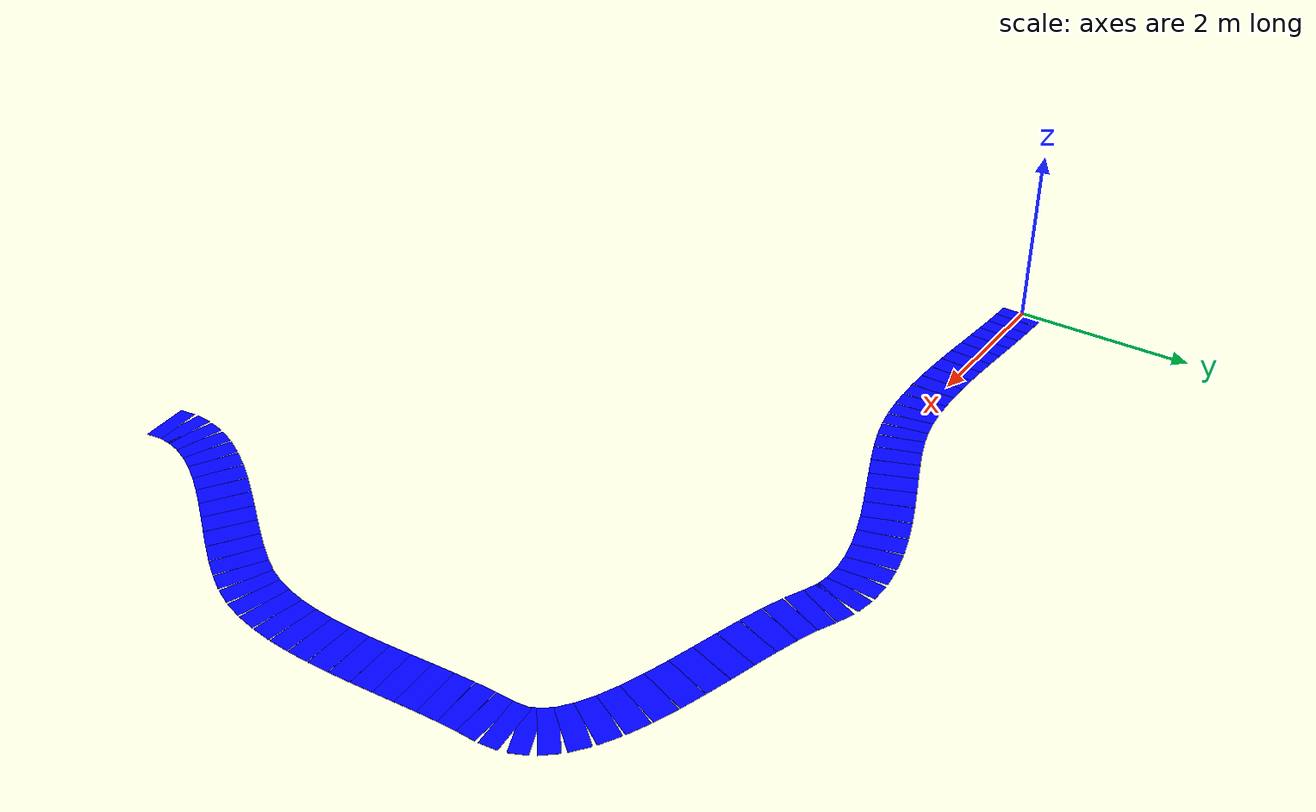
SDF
<?xml version="1.0" ?>
<sdf version="1.10">
  <model name="generated_path">
    <static>true</static>
    <pose>0 0 0 0 0 0</pose>

    <link name="path_segment_0">
      <pose>0.09878952298527195 -0.001483227966860554 9.967201166180758e-05 0 0 -0.015012892935983926</pose>
      <visual name="path_visual_0">
        <geometry>
          <box>
            <size>0.19760131393145391 0.5 0.002</size>
          </box>
        </geometry>
        <material>
          <ambient>0.0 0.0 1.0 1.0</ambient>
          <diffuse>0.0 0.0 1.0 1.0</diffuse>
          <specular>0.0 0.0 1.0 1.0</specular>
        </material>
      </visual>
      <collision name="path_collision_0">
        <geometry>
          <box>
            <size>0.19760131393145391 0.5 0.002</size>
          </box>
        </geometry>
      </collision>
    </link>

    <link name="path_segment_1">
      <pose>0.30059950424329346 -0.006959761998345677 0.0002848032069970846 0 0 -0.03874286655798512</pose>
      <visual name="path_visual_1">
        <geometry>
          <box>
            <size>0.20619564802442458 0.5 0.002</size>
          </box>
        </geometry>
        <material>
          <ambient>0.0 0.0 1.0 1.0</ambient>
          <diffuse>0.0 0.0 1.0 1.0</diffuse>
          <specular>0.0 0.0 1.0 1.0</specular>
        </material>
      </visual>
      <collision name="path_collision_1">
        <geometry>
          <box>
            <size>0.20619564802442458 0.5 0.002</size>
          </box>
        </geometry>
      </collision>
    </link>

    <link name="path_segment_2">
      <pose>0.5101349043373846 -0.01677188547142319 0.0004426020408163266 0 0 -0.054574871914144334</pose>
      <visual name="path_visual_2">
        <geometry>
          <box>
            <size>0.213347523700058 0.5 0.002</size>
          </box>
        </geometry>
        <material>
          <ambient>0.0 0.0 1.0 1.0</ambient>
          <diffuse>0.0 0.0 1.0 1.0</diffuse>
          <specular>0.0 0.0 1.0 1.0</specular>
        </material>
      </visual>
      <collision name="path_collision_2">
        <geometry>
          <box>
            <size>0.213347523700058 0.5 0.002</size>
          </box>
        </geometry>
      </collision>
    </link>

    <link name="path_segment_3">
      <pose>0.7259228197897747 -0.029550464878221806 0.0005752551020408163 0 0 -0.06360560707752454</pose>
      <visual name="path_visual_3">
        <geometry>
          <box>
            <size>0.21898877645436943 0.5 0.002</size>
          </box>
        </geometry>
        <material>
          <ambient>0.0 0.0 1.0 1.0</ambient>
          <diffuse>0.0 0.0 1.0 1.0</diffuse>
          <specular>0.0 0.0 1.0 1.0</specular>
        </material>
      </visual>
      <collision name="path_collision_3">
        <geometry>
          <box>
            <size>0.21898877645436943 0.5 0.002</size>
          </box>
        </geometry>
      </collision>
    </link>

    <link name="path_segment_4">
      <pose>0.9464903471226933 -0.04392636671087026 0.0006849489795918368 0 0 -0.0665368809097923</pose>
      <visual name="path_visual_4">
        <geometry>
          <box>
            <size>0.22308273634452622 0.5 0.002</size>
          </box>
        </geometry>
        <material>
          <ambient>0.0 0.0 1.0 1.0</ambient>
          <diffuse>0.0 0.0 1.0 1.0</diffuse>
          <specular>0.0 0.0 1.0 1.0</specular>
        </material>
      </visual>
      <collision name="path_collision_4">
        <geometry>
          <box>
            <size>0.22308273634452622 0.5 0.002</size>
          </box>
        </geometry>
      </collision>
    </link>

    <link name="path_segment_5">
      <pose>1.1703645828583695 -0.05853045746149725 0.0007738702623906706 0 0 -0.06376112739624466</pose>
      <visual name="path_visual_5">
        <geometry>
          <box>
            <size>0.2256178312563829 0.5 0.002</size>
          </box>
        </geometry>
        <material>
          <ambient>0.0 0.0 1.0 1.0</ambient>
          <diffuse>0.0 0.0 1.0 1.0</diffuse>
          <specular>0.0 0.0 1.0 1.0</specular>
        </material>
      </visual>
      <collision name="path_collision_5">
        <geometry>
          <box>
            <size>0.2256178312563829 0.5 0.002</size>
          </box>
        </geometry>
      </collision>
    </link>

    <link name="path_segment_6">
      <pose>1.396072623519033 -0.0719936036222315 0.0008442055393586005 0 0 -0.05541290578651952</pose>
      <visual name="path_visual_6">
        <geometry>
          <box>
            <size>0.2266045330611218 0.5 0.002</size>
          </box>
        </geometry>
        <material>
          <ambient>0.0 0.0 1.0 1.0</ambient>
          <diffuse>0.0 0.0 1.0 1.0</diffuse>
          <specular>0.0 0.0 1.0 1.0</specular>
        </material>
      </visual>
      <collision name="path_collision_6">
        <geometry>
          <box>
            <size>0.2266045330611218 0.5 0.002</size>
          </box>
        </geometry>
      </collision>
    </link>

    <link name="path_segment_7">
      <pose>1.6221415656269125 -0.08294667168520176 0.0008981413994169098 0 0 -0.04139522236983478</pose>
      <visual name="path_visual_7">
        <geometry>
          <box>
            <size>0.22607483620377075 0.5 0.002</size>
          </box>
        </geometry>
        <material>
          <ambient>0.0 0.0 1.0 1.0</ambient>
          <diffuse>0.0 0.0 1.0 1.0</diffuse>
          <specular>0.0 0.0 1.0 1.0</specular>
        </material>
      </visual>
      <collision name="path_collision_7">
        <geometry>
          <box>
            <size>0.22607483620377075 0.5 0.002</size>
          </box>
        </geometry>
      </collision>
    </link>

    <link name="path_segment_8">
      <pose>1.847098505704238 -0.09002052814253672 0.0009378644314868806 0 0 -0.021386326183052088</pose>
      <visual name="path_visual_8">
        <geometry>
          <box>
            <size>0.22408395643336296 0.5 0.002</size>
          </box>
        </geometry>
        <material>
          <ambient>0.0 0.0 1.0 1.0</ambient>
          <diffuse>0.0 0.0 1.0 1.0</diffuse>
          <specular>0.0 0.0 1.0 1.0</specular>
        </material>
      </visual>
      <collision name="path_collision_8">
        <geometry>
          <box>
            <size>0.22408395643336296 0.5 0.002</size>
          </box>
        </geometry>
      </collision>
    </link>

    <link name="path_segment_9">
      <pose>2.069470540273238 -0.09184603948636509 0.000965561224489796 0 0 0.005169350811798206</pose>
      <visual name="path_visual_9">
        <geometry>
          <box>
            <size>0.22071430492338318 0.5 0.002</size>
          </box>
        </geometry>
        <material>
          <ambient>0.0 0.0 1.0 1.0</ambient>
          <diffuse>0.0 0.0 1.0 1.0</diffuse>
          <specular>0.0 0.0 1.0 1.0</specular>
        </material>
      </visual>
      <collision name="path_collision_9">
        <geometry>
          <box>
            <size>0.22071430492338318 0.5 0.002</size>
          </box>
        </geometry>
      </collision>
    </link>

    <link name="path_segment_10">
      <pose>2.287784765856143 -0.08705407220881561 0.000983418367346939 0 0 0.03908301323054155</pose>
      <visual name="path_visual_10">
        <geometry>
          <box>
            <size>0.21608210496932423 0.5 0.002</size>
          </box>
        </geometry>
        <material>
          <ambient>0.0 0.0 1.0 1.0</ambient>
          <diffuse>0.0 0.0 1.0 1.0</diffuse>
          <specular>0.0 0.0 1.0 1.0</specular>
        </material>
      </visual>
      <collision name="path_collision_10">
        <geometry>
          <box>
            <size>0.21608210496932423 0.5 0.002</size>
          </box>
        </geometry>
      </collision>
    </link>

    <link name="path_segment_11">
      <pose>2.5005682789751815 -0.074275492802017 0.000993622448979592 0 0 0.08145151724469343</pose>
      <visual name="path_visual_11">
        <geometry>
          <box>
            <size>0.2103473041212603 0.5 0.002</size>
          </box>
        </geometry>
        <material>
          <ambient>0.0 0.0 1.0 1.0</ambient>
          <diffuse>0.0 0.0 1.0 1.0</diffuse>
          <specular>0.0 0.0 1.0 1.0</specular>
        </material>
      </visual>
      <collision name="path_collision_11">
        <geometry>
          <box>
            <size>0.2103473041212603 0.5 0.002</size>
          </box>
        </geometry>
      </collision>
    </link>

    <link name="path_segment_12">
      <pose>2.706348176152583 -0.052141167758097975 0.000998360058309038 0 0 0.13368599201058737</pose>
      <visual name="path_visual_12">
        <geometry>
          <box>
            <size>0.2037276583191543 0.5 0.002</size>
          </box>
        </geometry>
        <material>
          <ambient>0.0 0.0 1.0 1.0</ambient>
          <diffuse>0.0 0.0 1.0 1.0</diffuse>
          <specular>0.0 0.0 1.0 1.0</specular>
        </material>
      </visual>
      <collision name="path_collision_12">
        <geometry>
          <box>
            <size>0.2037276583191543 0.5 0.002</size>
          </box>
        </geometry>
      </collision>
    </link>

    <link name="path_segment_13">
      <pose>2.9036515539105765 -0.019281963569187224 0.00099981778425656 0 0 0.1975180524499161</pose>
      <visual name="path_visual_13">
        <geometry>
          <box>
            <size>0.19651785855672263 0.5 0.002</size>
          </box>
        </geometry>
        <material>
          <ambient>0.0 0.0 1.0 1.0</ambient>
          <diffuse>0.0 0.0 1.0 1.0</diffuse>
          <specular>0.0 0.0 1.0 1.0</specular>
        </material>
      </visual>
      <collision name="path_collision_13">
        <geometry>
          <box>
            <size>0.19651785855672263 0.5 0.002</size>
          </box>
        </geometry>
      </collision>
    </link>

    <link name="path_segment_14">
      <pose>3.096497941196305 0.027349748870957872 0.001 0 0 0.27618014436721716</pose>
      <visual name="path_visual_14">
        <geometry>
          <box>
            <size>0.20059772100829137 0.5 0.002</size>
          </box>
        </geometry>
        <material>
          <ambient>0.0 0.0 1.0 1.0</ambient>
          <diffuse>0.0 0.0 1.0 1.0</diffuse>
          <specular>0.0 0.0 1.0 1.0</specular>
        </material>
      </visual>
      <collision name="path_collision_14">
        <geometry>
          <box>
            <size>0.20059772100829137 0.5 0.002</size>
          </box>
        </geometry>
      </collision>
    </link>

    <link name="path_segment_15">
      <pose>3.2942891042563467 0.09054379192652609 0.0010000000000000002 0 0 0.34011534445830344</pose>
      <visual name="path_visual_15">
        <geometry>
          <box>
            <size>0.21489653530132977 0.5 0.002</size>
          </box>
        </geometry>
        <material>
          <ambient>0.0 0.0 1.0 1.0</ambient>
          <diffuse>0.0 0.0 1.0 1.0</diffuse>
          <specular>0.0 0.0 1.0 1.0</specular>
        </material>
      </visual>
      <collision name="path_collision_15">
        <geometry>
          <box>
            <size>0.21489653530132977 0.5 0.002</size>
          </box>
        </geometry>
      </collision>
    </link>

    <link name="path_segment_16">
      <pose>3.5007690842241432 0.168507038852697 0.001 0 0 0.3808689758553657</pose>
      <visual name="path_visual_16">
        <geometry>
          <box>
            <size>0.226612093768077 0.5 0.002</size>
          </box>
        </geometry>
        <material>
          <ambient>0.0 0.0 1.0 1.0</ambient>
          <diffuse>0.0 0.0 1.0 1.0</diffuse>
          <specular>0.0 0.0 1.0 1.0</specular>
        </material>
      </visual>
      <collision name="path_collision_16">
        <geometry>
          <box>
            <size>0.226612093768077 0.5 0.002</size>
          </box>
        </geometry>
      </collision>
    </link>

    <link name="path_segment_17">
      <pose>3.7141343922454855 0.2567997161360662 0.001 0 0 0.4034186676300863</pose>
      <visual name="path_visual_17">
        <geometry>
          <box>
            <size>0.2352412506366063 0.5 0.002</size>
          </box>
        </geometry>
        <material>
          <ambient>0.0 0.0 1.0 1.0</ambient>
          <diffuse>0.0 0.0 1.0 1.0</diffuse>
          <specular>0.0 0.0 1.0 1.0</specular>
        </material>
      </visual>
      <collision name="path_collision_17">
        <geometry>
          <box>
            <size>0.2352412506366063 0.5 0.002</size>
          </box>
        </geometry>
      </collision>
    </link>

    <link name="path_segment_18">
      <pose>3.932581539466164 0.3509820502632294 0.001 0 0 0.4106286386327133</pose>
      <visual name="path_visual_18">
        <geometry>
          <box>
            <size>0.2405326601156506 0.5 0.002</size>
          </box>
        </geometry>
        <material>
          <ambient>0.0 0.0 1.0 1.0</ambient>
          <diffuse>0.0 0.0 1.0 1.0</diffuse>
          <specular>0.0 0.0 1.0 1.0</specular>
        </material>
      </visual>
      <collision name="path_collision_18">
        <geometry>
          <box>
            <size>0.2405326601156506 0.5 0.002</size>
          </box>
        </geometry>
      </collision>
    </link>

    <link name="path_segment_19">
      <pose>4.15430703703197 0.44661426772078205 0.001 0 0 0.4038025446925784</pose>
      <visual name="path_visual_19">
        <geometry>
          <box>
            <size>0.24240997209578077 0.5 0.002</size>
          </box>
        </geometry>
        <material>
          <ambient>0.0 0.0 1.0 1.0</ambient>
          <diffuse>0.0 0.0 1.0 1.0</diffuse>
          <specular>0.0 0.0 1.0 1.0</specular>
        </material>
      </visual>
      <collision name="path_collision_19">
        <geometry>
          <box>
            <size>0.24240997209578077 0.5 0.002</size>
          </box>
        </geometry>
      </collision>
    </link>

    <link name="path_segment_20">
      <pose>4.377507396088692 0.53925659499532 0.001 0 0 0.38298293112752047</pose>
      <visual name="path_visual_20">
        <geometry>
          <box>
            <size>0.24094219788109597 0.5 0.002</size>
          </box>
        </geometry>
        <material>
          <ambient>0.0 0.0 1.0 1.0</ambient>
          <diffuse>0.0 0.0 1.0 1.0</diffuse>
          <specular>0.0 0.0 1.0 1.0</specular>
        </material>
      </visual>
      <collision name="path_collision_20">
        <geometry>
          <box>
            <size>0.24094219788109597 0.5 0.002</size>
          </box>
        </geometry>
      </collision>
    </link>

    <link name="path_segment_21">
      <pose>4.600379127782123 0.6244692585734386 0.001 0 0 0.3470505538573857</pose>
      <visual name="path_visual_21">
        <geometry>
          <box>
            <size>0.23634759305688693 0.5 0.002</size>
          </box>
        </geometry>
        <material>
          <ambient>0.0 0.0 1.0 1.0</ambient>
          <diffuse>0.0 0.0 1.0 1.0</diffuse>
          <specular>0.0 0.0 1.0 1.0</specular>
        </material>
      </visual>
      <collision name="path_collision_21">
        <geometry>
          <box>
            <size>0.23634759305688693 0.5 0.002</size>
          </box>
        </geometry>
      </collision>
    </link>

    <link name="path_segment_22">
      <pose>4.82111874325805 0.6978124849417336 0.001 0 0 0.29368067866771114</pose>
      <visual name="path_visual_22">
        <geometry>
          <box>
            <size>0.2290285687976082 0.5 0.002</size>
          </box>
        </geometry>
        <material>
          <ambient>0.0 0.0 1.0 1.0</ambient>
          <diffuse>0.0 0.0 1.0 1.0</diffuse>
          <specular>0.0 0.0 1.0 1.0</specular>
        </material>
      </visual>
      <collision name="path_collision_22">
        <geometry>
          <box>
            <size>0.2290285687976082 0.5 0.002</size>
          </box>
        </geometry>
      </collision>
    </link>

    <link name="path_segment_23">
      <pose>5.037922753662265 0.7548465005868006 0.001 0 0 0.21923908253867058</pose>
      <visual name="path_visual_23">
        <geometry>
          <box>
            <size>0.21964287858298964 0.5 0.002</size>
          </box>
        </geometry>
        <material>
          <ambient>0.0 0.0 1.0 1.0</ambient>
          <diffuse>0.0 0.0 1.0 1.0</diffuse>
          <specular>0.0 0.0 1.0 1.0</specular>
        </material>
      </visual>
      <collision name="path_collision_23">
        <geometry>
          <box>
            <size>0.21964287858298964 0.5 0.002</size>
          </box>
        </geometry>
      </collision>
    </link>

    <link name="path_segment_24">
      <pose>5.248987670140559 0.7911315319952352 0.001 0 0 0.11881795695559709</pose>
      <visual name="path_visual_24">
        <geometry>
          <box>
            <size>0.20921961121450378 0.5 0.002</size>
          </box>
        </geometry>
        <material>
          <ambient>0.0 0.0 1.0 1.0</ambient>
          <diffuse>0.0 0.0 1.0 1.0</diffuse>
          <specular>0.0 0.0 1.0 1.0</specular>
        </material>
      </visual>
      <collision name="path_collision_24">
        <geometry>
          <box>
            <size>0.20921961121450378 0.5 0.002</size>
          </box>
        </geometry>
      </collision>
    </link>

    <link name="path_segment_25">
      <pose>5.452510003838721 0.8022278056536332 0.001 0 0 -0.013085286068308862</pose>
      <visual name="path_visual_25">
        <geometry>
          <box>
            <size>0.19931723386899547 0.5 0.002</size>
          </box>
        </geometry>
        <material>
          <ambient>0.0 0.0 1.0 1.0</ambient>
          <diffuse>0.0 0.0 1.0 1.0</diffuse>
          <specular>0.0 0.0 1.0 1.0</specular>
        </material>
      </visual>
      <collision name="path_collision_25">
        <geometry>
          <box>
            <size>0.19931723386899547 0.5 0.002</size>
          </box>
        </geometry>
      </collision>
    </link>

    <link name="path_segment_26">
      <pose>5.646686265902542 0.7836955480485898 0.001 0 0 -0.18028004361840877</pose>
      <visual name="path_visual_26">
        <geometry>
          <box>
            <size>0.19216670017735754 0.5 0.002</size>
          </box>
        </geometry>
        <material>
          <ambient>0.0 0.0 1.0 1.0</ambient>
          <diffuse>0.0 0.0 1.0 1.0</diffuse>
          <specular>0.0 0.0 1.0 1.0</specular>
        </material>
      </visual>
      <collision name="path_collision_26">
        <geometry>
          <box>
            <size>0.19216670017735754 0.5 0.002</size>
          </box>
        </geometry>
      </collision>
    </link>

    <link name="path_segment_27">
      <pose>5.829712967477812 0.7310949856667008 0.001 0 0 -0.3802347658490743</pose>
      <visual name="path_visual_27">
        <geometry>
          <box>
            <size>0.19061526183715297 0.5 0.002</size>
          </box>
        </geometry>
        <material>
          <ambient>0.0 0.0 1.0 1.0</ambient>
          <diffuse>0.0 0.0 1.0 1.0</diffuse>
          <specular>0.0 0.0 1.0 1.0</specular>
        </material>
      </visual>
      <collision name="path_collision_27">
        <geometry>
          <box>
            <size>0.19061526183715297 0.5 0.002</size>
          </box>
        </geometry>
      </collision>
    </link>

    <link name="path_segment_28">
      <pose>6.010975251359158 0.6529125772713699 0.001 0 0 -0.4323807549572415</pose>
      <visual name="path_visual_28">
        <geometry>
          <box>
            <size>0.20432764750859242 0.5 0.002</size>
          </box>
        </geometry>
        <material>
          <ambient>0.0 0.0 1.0 1.0</ambient>
          <diffuse>0.0 0.0 1.0 1.0</diffuse>
          <specular>0.0 0.0 1.0 1.0</specular>
        </material>
      </visual>
      <collision name="path_collision_28">
        <geometry>
          <box>
            <size>0.20432764750859242 0.5 0.002</size>
          </box>
        </geometry>
      </collision>
    </link>

    <link name="path_segment_29">
      <pose>6.209525422867751 0.5712000566362921 0.0010000000000000002 0 0 -0.3523890198995525</pose>
      <visual name="path_visual_29">
        <geometry>
          <box>
            <size>0.22542926245741451 0.5 0.002</size>
          </box>
        </geometry>
        <material>
          <ambient>0.0 0.0 1.0 1.0</ambient>
          <diffuse>0.0 0.0 1.0 1.0</diffuse>
          <specular>0.0 0.0 1.0 1.0</specular>
        </material>
      </visual>
      <collision name="path_collision_29">
        <geometry>
          <box>
            <size>0.22542926245741451 0.5 0.002</size>
          </box>
        </geometry>
      </collision>
    </link>

    <link name="path_segment_30">
      <pose>6.430944951992478 0.49604148935858083 0.001 0 0 -0.30384108117899195</pose>
      <visual name="path_visual_30">
        <geometry>
          <box>
            <size>0.24236387415946323 0.5 0.002</size>
          </box>
        </geometry>
        <material>
          <ambient>0.0 0.0 1.0 1.0</ambient>
          <diffuse>0.0 0.0 1.0 1.0</diffuse>
          <specular>0.0 0.0 1.0 1.0</specular>
        </material>
      </visual>
      <collision name="path_collision_30">
        <geometry>
          <box>
            <size>0.24236387415946323 0.5 0.002</size>
          </box>
        </geometry>
      </collision>
    </link>

    <link name="path_segment_31">
      <pose>6.668865942512246 0.42491423012528384 0.001 0 0 -0.2777792127692058</pose>
      <visual name="path_visual_31">
        <geometry>
          <box>
            <size>0.254328992574339 0.5 0.002</size>
          </box>
        </geometry>
        <material>
          <ambient>0.0 0.0 1.0 1.0</ambient>
          <diffuse>0.0 0.0 1.0 1.0</diffuse>
          <specular>0.0 0.0 1.0 1.0</specular>
        </material>
      </visual>
      <collision name="path_collision_31">
        <geometry>
          <box>
            <size>0.254328992574339 0.5 0.002</size>
          </box>
        </geometry>
      </collision>
    </link>

    <link name="path_segment_32">
      <pose>6.916920498205962 0.3552956336234488 0.001 0 0 -0.2695646685802484</pose>
      <visual name="path_visual_32">
        <geometry>
          <box>
            <size>0.2609531871273585 0.5 0.002</size>
          </box>
        </geometry>
        <material>
          <ambient>0.0 0.0 1.0 1.0</ambient>
          <diffuse>0.0 0.0 1.0 1.0</diffuse>
          <specular>0.0 0.0 1.0 1.0</specular>
        </material>
      </visual>
      <collision name="path_collision_32">
        <geometry>
          <box>
            <size>0.2609531871273585 0.5 0.002</size>
          </box>
        </geometry>
      </collision>
    </link>

    <link name="path_segment_33">
      <pose>7.1687407228525295 0.2846630545401231 0.001 0 0 -0.2773404123798984</pose>
      <visual name="path_visual_33">
        <geometry>
          <box>
            <size>0.26212776535999754 0.5 0.002</size>
          </box>
        </geometry>
        <material>
          <ambient>0.0 0.0 1.0 1.0</ambient>
          <diffuse>0.0 0.0 1.0 1.0</diffuse>
          <specular>0.0 0.0 1.0 1.0</specular>
        </material>
      </visual>
      <collision name="path_collision_33">
        <geometry>
          <box>
            <size>0.26212776535999754 0.5 0.002</size>
          </box>
        </geometry>
      </collision>
    </link>

    <link name="path_segment_34">
      <pose>7.417958720230855 0.2104938475623545 0.001 0 0 -0.30137386749914974</pose>
      <visual name="path_visual_34">
        <geometry>
          <box>
            <size>0.25795086289218794 0.5 0.002</size>
          </box>
        </geometry>
        <material>
          <ambient>0.0 0.0 1.0 1.0</ambient>
          <diffuse>0.0 0.0 1.0 1.0</diffuse>
          <specular>0.0 0.0 1.0 1.0</specular>
        </material>
      </visual>
      <collision name="path_collision_34">
        <geometry>
          <box>
            <size>0.25795086289218794 0.5 0.002</size>
          </box>
        </geometry>
      </collision>
    </link>

    <link name="path_segment_35">
      <pose>7.658206594119846 0.13026536737719063 0.001 0 0 -0.3439944276009233</pose>
      <visual name="path_visual_35">
        <geometry>
          <box>
            <size>0.24874345922115618 0.5 0.002</size>
          </box>
        </geometry>
        <material>
          <ambient>0.0 0.0 1.0 1.0</ambient>
          <diffuse>0.0 0.0 1.0 1.0</diffuse>
          <specular>0.0 0.0 1.0 1.0</specular>
        </material>
      </visual>
      <collision name="path_collision_35">
        <geometry>
          <box>
            <size>0.24874345922115618 0.5 0.002</size>
          </box>
        </geometry>
      </collision>
    </link>

    <link name="path_segment_36">
      <pose>7.883116448298404 0.041454968671678985 0.001 0 0 -0.4100167365212639</pose>
      <visual name="path_visual_36">
        <geometry>
          <box>
            <size>0.2351385265940291 0.5 0.002</size>
          </box>
        </geometry>
        <material>
          <ambient>0.0 0.0 1.0 1.0</ambient>
          <diffuse>0.0 0.0 1.0 1.0</diffuse>
          <specular>0.0 0.0 1.0 1.0</specular>
        </material>
      </visual>
      <collision name="path_collision_36">
        <geometry>
          <box>
            <size>0.2351385265940291 0.5 0.002</size>
          </box>
        </geometry>
      </collision>
    </link>

    <link name="path_segment_37">
      <pose>8.086320386545438 -0.058459993867132756 0.001 0 0 -0.5075818002985873</pose>
      <visual name="path_visual_37">
        <geometry>
          <box>
            <size>0.21827909672714346 0.5 0.002</size>
          </box>
        </geometry>
        <material>
          <ambient>0.0 0.0 1.0 1.0</ambient>
          <diffuse>0.0 0.0 1.0 1.0</diffuse>
          <specular>0.0 0.0 1.0 1.0</specular>
        </material>
      </visual>
      <collision name="path_collision_37">
        <geometry>
          <box>
            <size>0.21827909672714346 0.5 0.002</size>
          </box>
        </geometry>
      </collision>
    </link>

    <link name="path_segment_38">
      <pose>8.261450512639854 -0.17200216555219713 0.001 0 0 -0.6489378250252369</pose>
      <visual name="path_visual_38">
        <geometry>
          <box>
            <size>0.20019581799715738 0.5 0.002</size>
          </box>
        </geometry>
        <material>
          <ambient>0.0 0.0 1.0 1.0</ambient>
          <diffuse>0.0 0.0 1.0 1.0</diffuse>
          <specular>0.0 0.0 1.0 1.0</specular>
        </material>
      </visual>
      <collision name="path_collision_38">
        <geometry>
          <box>
            <size>0.20019581799715738 0.5 0.002</size>
          </box>
        </geometry>
      </collision>
    </link>

    <link name="path_segment_39">
      <pose>8.402138930360556 -0.3016941916964665 0.001 0 0 -0.8487926495985981</pose>
      <visual name="path_visual_39">
        <geometry>
          <box>
            <size>0.18441138540226468 0.5 0.002</size>
          </box>
        </geometry>
        <material>
          <ambient>0.0 0.0 1.0 1.0</ambient>
          <diffuse>0.0 0.0 1.0 1.0</diffuse>
          <specular>0.0 0.0 1.0 1.0</specular>
        </material>
      </visual>
      <collision name="path_collision_39">
        <geometry>
          <box>
            <size>0.18441138540226468 0.5 0.002</size>
          </box>
        </geometry>
      </collision>
    </link>

    <link name="path_segment_40">
      <pose>8.502017743486448 -0.45005871761289296 0.001 0 0 -1.1136557776414806</pose>
      <visual name="path_visual_40">
        <geometry>
          <box>
            <size>0.17644958383581152 0.5 0.002</size>
          </box>
        </geometry>
        <material>
          <ambient>0.0 0.0 1.0 1.0</ambient>
          <diffuse>0.0 0.0 1.0 1.0</diffuse>
          <specular>0.0 0.0 1.0 1.0</specular>
        </material>
      </visual>
      <collision name="path_collision_40">
        <geometry>
          <box>
            <size>0.17644958383581152 0.5 0.002</size>
          </box>
        </geometry>
      </collision>
    </link>

    <link name="path_segment_41">
      <pose>8.55471905579644 -0.6196183886144293 0.001 0 0 -1.4197302478833826</pose>
      <visual name="path_visual_41">
        <geometry>
          <box>
            <size>0.18287058074922274 0.5 0.002</size>
          </box>
        </geometry>
        <material>
          <ambient>0.0 0.0 1.0 1.0</ambient>
          <diffuse>0.0 0.0 1.0 1.0</diffuse>
          <specular>0.0 0.0 1.0 1.0</specular>
        </material>
      </visual>
      <collision name="path_collision_41">
        <geometry>
          <box>
            <size>0.18287058074922274 0.5 0.002</size>
          </box>
        </geometry>
      </collision>
    </link>

    <link name="path_segment_42">
      <pose>8.57112820532938 -0.809149357891474 0.001 0 0 -1.5440835446919214</pose>
      <visual name="path_visual_42">
        <geometry>
          <box>
            <size>0.19834479619238032 0.5 0.002</size>
          </box>
        </geometry>
        <material>
          <ambient>0.0 0.0 1.0 1.0</ambient>
          <diffuse>0.0 0.0 1.0 1.0</diffuse>
          <specular>0.0 0.0 1.0 1.0</specular>
        </material>
      </visual>
      <collision name="path_collision_42">
        <geometry>
          <box>
            <size>0.19834479619238032 0.5 0.002</size>
          </box>
        </geometry>
      </collision>
    </link>

    <link name="path_segment_43">
      <pose>8.58072504940373 -1.0122424967572368 0.0010000000000000002 0 0 -1.504059800215892</pose>
      <visual name="path_visual_43">
        <geometry>
          <box>
            <size>0.20837610083845204 0.5 0.002</size>
          </box>
        </geometry>
        <material>
          <ambient>0.0 0.0 1.0 1.0</ambient>
          <diffuse>0.0 0.0 1.0 1.0</diffuse>
          <specular>0.0 0.0 1.0 1.0</specular>
        </material>
      </visual>
      <collision name="path_collision_43">
        <geometry>
          <box>
            <size>0.20837610083845204 0.5 0.002</size>
          </box>
        </geometry>
      </collision>
    </link>

    <link name="path_segment_44">
      <pose>8.597748138607482 -1.224076984015528 0.001 0 0 -1.4776732946906668</pose>
      <visual name="path_visual_44">
        <geometry>
          <box>
            <size>0.21669563300014047 0.5 0.002</size>
          </box>
        </geometry>
        <material>
          <ambient>0.0 0.0 1.0 1.0</ambient>
          <diffuse>0.0 0.0 1.0 1.0</diffuse>
          <specular>0.0 0.0 1.0 1.0</specular>
        </material>
      </visual>
      <collision name="path_collision_44">
        <geometry>
          <box>
            <size>0.21669563300014047 0.5 0.002</size>
          </box>
        </geometry>
      </collision>
    </link>

    <link name="path_segment_45">
      <pose>8.619853431778521 -1.4428590957153942 0.001 0 0 -1.4627446319064115</pose>
      <visual name="path_visual_45">
        <geometry>
          <box>
            <size>0.2231086417891441 0.5 0.002</size>
          </box>
        </geometry>
        <material>
          <ambient>0.0 0.0 1.0 1.0</ambient>
          <diffuse>0.0 0.0 1.0 1.0</diffuse>
          <specular>0.0 0.0 1.0 1.0</specular>
        </material>
      </visual>
      <collision name="path_collision_45">
        <geometry>
          <box>
            <size>0.2231086417891441 0.5 0.002</size>
          </box>
        </geometry>
      </collision>
    </link>

    <link name="path_segment_46">
      <pose>8.64469688775473 -1.6667951079058825 0.001 0 0 -1.4579188412779336</pose>
      <visual name="path_visual_46">
        <geometry>
          <box>
            <size>0.2275123980565381 0.5 0.002</size>
          </box>
        </geometry>
        <material>
          <ambient>0.0 0.0 1.0 1.0</ambient>
          <diffuse>0.0 0.0 1.0 1.0</diffuse>
          <specular>0.0 0.0 1.0 1.0</specular>
        </material>
      </visual>
      <collision name="path_collision_46">
        <geometry>
          <box>
            <size>0.2275123980565381 0.5 0.002</size>
          </box>
        </geometry>
      </collision>
    </link>

    <link name="path_segment_47">
      <pose>8.669934465373984 -1.8940912966360393 0.001 0 0 -1.4624883492047225</pose>
      <visual name="path_visual_47">
        <geometry>
          <box>
            <size>0.22987481533206147 0.5 0.002</size>
          </box>
        </geometry>
        <material>
          <ambient>0.0 0.0 1.0 1.0</ambient>
          <diffuse>0.0 0.0 1.0 1.0</diffuse>
          <specular>0.0 0.0 1.0 1.0</specular>
        </material>
      </visual>
      <collision name="path_collision_47">
        <geometry>
          <box>
            <size>0.22987481533206147 0.5 0.002</size>
          </box>
        </geometry>
      </collision>
    </link>

    <link name="path_segment_48">
      <pose>8.693222123474172 -2.122953937954911 0.001 0 0 -1.4762841098605424</pose>
      <visual name="path_visual_48">
        <geometry>
          <box>
            <size>0.2302249203047387 0.5 0.002</size>
          </box>
        </geometry>
        <material>
          <ambient>0.0 0.0 1.0 1.0</ambient>
          <diffuse>0.0 0.0 1.0 1.0</diffuse>
          <specular>0.0 0.0 1.0 1.0</specular>
        </material>
      </visual>
      <collision name="path_collision_48">
        <geometry>
          <box>
            <size>0.2302249203047387 0.5 0.002</size>
          </box>
        </geometry>
      </collision>
    </link>

    <link name="path_segment_49">
      <pose>8.71221582089317 -2.351589307911545 0.001 0 0 -1.499620794199308</pose>
      <visual name="path_visual_49">
        <geometry>
          <box>
            <size>0.2286522299428534 0.5 0.002</size>
          </box>
        </geometry>
        <material>
          <ambient>0.0 0.0 1.0 1.0</ambient>
          <diffuse>0.0 0.0 1.0 1.0</diffuse>
          <specular>0.0 0.0 1.0 1.0</specular>
        </material>
      </visual>
      <collision name="path_collision_49">
        <geometry>
          <box>
            <size>0.2286522299428534 0.5 0.002</size>
          </box>
        </geometry>
      </collision>
    </link>

    <link name="path_segment_50">
      <pose>8.724571516468862 -2.578203682554987 0.001 0 0 -1.5332812690805426</pose>
      <visual name="path_visual_50">
        <geometry>
          <box>
            <size>0.22531397854831062 0.5 0.002</size>
          </box>
        </geometry>
        <material>
          <ambient>0.0 0.0 1.0 1.0</ambient>
          <diffuse>0.0 0.0 1.0 1.0</diffuse>
          <specular>0.0 0.0 1.0 1.0</specular>
        </material>
      </visual>
      <collision name="path_collision_50">
        <geometry>
          <box>
            <size>0.22531397854831062 0.5 0.002</size>
          </box>
        </geometry>
      </collision>
    </link>

    <link name="path_segment_51">
      <pose>8.727945169039128 -2.8010033379342847 0.001 0 0 -1.5785232160177642</pose>
      <visual name="path_visual_51">
        <geometry>
          <box>
            <size>0.22045044570351016 0.5 0.002</size>
          </box>
        </geometry>
        <material>
          <ambient>0.0 0.0 1.0 1.0</ambient>
          <diffuse>0.0 0.0 1.0 1.0</diffuse>
          <specular>0.0 0.0 1.0 1.0</specular>
        </material>
      </visual>
      <collision name="path_collision_51">
        <geometry>
          <box>
            <size>0.22045044570351016 0.5 0.002</size>
          </box>
        </geometry>
      </collision>
    </link>

    <link name="path_segment_52">
      <pose>8.71999273744185 -3.018194550098484 0.001 0 0 -1.637080214924388</pose>
      <visual name="path_visual_52">
        <geometry>
          <box>
            <size>0.2144093967563361 0.5 0.002</size>
          </box>
        </geometry>
        <material>
          <ambient>0.0 0.0 1.0 1.0</ambient>
          <diffuse>0.0 0.0 1.0 1.0</diffuse>
          <specular>0.0 0.0 1.0 1.0</specular>
        </material>
      </visual>
      <collision name="path_collision_52">
        <geometry>
          <box>
            <size>0.2144093967563361 0.5 0.002</size>
          </box>
        </geometry>
      </collision>
    </link>

    <link name="path_segment_53">
      <pose>8.698370180514907 -3.2279835950966316 0.001 0 0 -1.7111039452724022</pose>
      <visual name="path_visual_53">
        <geometry>
          <box>
            <size>0.20768040088350886 0.5 0.002</size>
          </box>
        </geometry>
        <material>
          <ambient>0.0 0.0 1.0 1.0</ambient>
          <diffuse>0.0 0.0 1.0 1.0</diffuse>
          <specular>0.0 0.0 1.0 1.0</specular>
        </material>
      </visual>
      <collision name="path_collision_53">
        <geometry>
          <box>
            <size>0.20768040088350886 0.5 0.002</size>
          </box>
        </geometry>
      </collision>
    </link>

    <link name="path_segment_54">
      <pose>8.660733457096182 -3.4285767489777745 0.001 0 0 -1.8029469968841032</pose>
      <visual name="path_visual_54">
        <geometry>
          <box>
            <size>0.2009371496308539 0.5 0.002</size>
          </box>
        </geometry>
        <material>
          <ambient>0.0 0.0 1.0 1.0</ambient>
          <diffuse>0.0 0.0 1.0 1.0</diffuse>
          <specular>0.0 0.0 1.0 1.0</specular>
        </material>
      </visual>
      <collision name="path_collision_54">
        <geometry>
          <box>
            <size>0.2009371496308539 0.5 0.002</size>
          </box>
        </geometry>
      </collision>
    </link>

    <link name="path_segment_55">
      <pose>8.604738526023556 -3.618180287790959 0.001 0 0 -1.9146268516501868</pose>
      <visual name="path_visual_55">
        <geometry>
          <box>
            <size>0.19507816240306466 0.5 0.002</size>
          </box>
        </geometry>
        <material>
          <ambient>0.0 0.0 1.0 1.0</ambient>
          <diffuse>0.0 0.0 1.0 1.0</diffuse>
          <specular>0.0 0.0 1.0 1.0</specular>
        </material>
      </visual>
      <collision name="path_collision_55">
        <geometry>
          <box>
            <size>0.19507816240306466 0.5 0.002</size>
          </box>
        </geometry>
      </collision>
    </link>

    <link name="path_segment_56">
      <pose>8.52854615695065 -3.8003041368064077 0.001 0 0 -2.0180585773870687</pose>
      <visual name="path_visual_56">
        <geometry>
          <box>
            <size>0.20028890546400596 0.5 0.002</size>
          </box>
        </geometry>
        <material>
          <ambient>0.0 0.0 1.0 1.0</ambient>
          <diffuse>0.0 0.0 1.0 1.0</diffuse>
          <specular>0.0 0.0 1.0 1.0</specular>
        </material>
      </visual>
      <collision name="path_collision_56">
        <geometry>
          <box>
            <size>0.20028890546400596 0.5 0.002</size>
          </box>
        </geometry>
      </collision>
    </link>

    <link name="path_segment_57">
      <pose>8.433097520385594 -3.984042465209388 0.0010000000000000002 0 0 -2.079713376720373</pose>
      <visual name="path_visual_57">
        <geometry>
          <box>
            <size>0.21401020099673965 0.5 0.002</size>
          </box>
        </geometry>
        <material>
          <ambient>0.0 0.0 1.0 1.0</ambient>
          <diffuse>0.0 0.0 1.0 1.0</diffuse>
          <specular>0.0 0.0 1.0 1.0</specular>
        </material>
      </visual>
      <collision name="path_collision_57">
        <geometry>
          <box>
            <size>0.21401020099673965 0.5 0.002</size>
          </box>
        </geometry>
      </collision>
    </link>

    <link name="path_segment_58">
      <pose>8.322242361078924 -4.173606685004787 0.001 0 0 -2.119187548517442</pose>
      <visual name="path_visual_58">
        <geometry>
          <box>
            <size>0.2252721130950148 0.5 0.002</size>
          </box>
        </geometry>
        <material>
          <ambient>0.0 0.0 1.0 1.0</ambient>
          <diffuse>0.0 0.0 1.0 1.0</diffuse>
          <specular>0.0 0.0 1.0 1.0</specular>
        </material>
      </visual>
      <collision name="path_collision_58">
        <geometry>
          <box>
            <size>0.2252721130950148 0.5 0.002</size>
          </box>
        </geometry>
      </collision>
    </link>

    <link name="path_segment_59">
      <pose>8.200463407984827 -4.368044856323249 0.001 0 0 -2.141091597985861</pose>
      <visual name="path_visual_59">
        <geometry>
          <box>
            <size>0.23360751322853557 0.5 0.002</size>
          </box>
        </geometry>
        <material>
          <ambient>0.0 0.0 1.0 1.0</ambient>
          <diffuse>0.0 0.0 1.0 1.0</diffuse>
          <specular>0.0 0.0 1.0 1.0</specular>
        </material>
      </visual>
      <collision name="path_collision_59">
        <geometry>
          <box>
            <size>0.23360751322853557 0.5 0.002</size>
          </box>
        </geometry>
      </collision>
    </link>

    <link name="path_segment_60">
      <pose>8.072243390057492 -4.566405039295421 0.001 0 0 -2.1481048122274147</pose>
      <visual name="path_visual_60">
        <geometry>
          <box>
            <size>0.23878139893753134 0.5 0.002</size>
          </box>
        </geometry>
        <material>
          <ambient>0.0 0.0 1.0 1.0</ambient>
          <diffuse>0.0 0.0 1.0 1.0</diffuse>
          <specular>0.0 0.0 1.0 1.0</specular>
        </material>
      </visual>
      <collision name="path_collision_60">
        <geometry>
          <box>
            <size>0.23878139893753134 0.5 0.002</size>
          </box>
        </geometry>
      </collision>
    </link>

    <link name="path_segment_61">
      <pose>7.942065036251099 -4.767735294051947 0.001 0 0 -2.1414648798177676</pose>
      <visual name="path_visual_61">
        <geometry>
          <box>
            <size>0.24072213111009855 0.5 0.002</size>
          </box>
        </geometry>
        <material>
          <ambient>0.0 0.0 1.0 1.0</ambient>
          <diffuse>0.0 0.0 1.0 1.0</diffuse>
          <specular>0.0 0.0 1.0 1.0</specular>
        </material>
      </visual>
      <collision name="path_collision_61">
        <geometry>
          <box>
            <size>0.24072213111009855 0.5 0.002</size>
          </box>
        </geometry>
      </collision>
    </link>

    <link name="path_segment_62">
      <pose>7.8144110755198355 -4.971083680723472 0.001 0 0 -2.121239052476078</pose>
      <visual name="path_visual_62">
        <geometry>
          <box>
            <size>0.2394944697747856 0.5 0.002</size>
          </box>
        </geometry>
        <material>
          <ambient>0.0 0.0 1.0 1.0</ambient>
          <diffuse>0.0 0.0 1.0 1.0</diffuse>
          <specular>0.0 0.0 1.0 1.0</specular>
        </material>
      </visual>
      <collision name="path_collision_62">
        <geometry>
          <box>
            <size>0.2394944697747856 0.5 0.002</size>
          </box>
        </geometry>
      </collision>
    </link>

    <link name="path_segment_63">
      <pose>7.693764236817884 -5.175498259440643 0.001 0 0 -2.086420902641819</pose>
      <visual name="path_visual_63">
        <geometry>
          <box>
            <size>0.23530257062233736 0.5 0.002</size>
          </box>
        </geometry>
        <material>
          <ambient>0.0 0.0 1.0 1.0</ambient>
          <diffuse>0.0 0.0 1.0 1.0</diffuse>
          <specular>0.0 0.0 1.0 1.0</specular>
        </material>
      </visual>
      <collision name="path_collision_63">
        <geometry>
          <box>
            <size>0.23530257062233736 0.5 0.002</size>
          </box>
        </geometry>
      </collision>
    </link>

    <link name="path_segment_64">
      <pose>7.584607249099431 -5.380027090334103 0.001 0 0 -2.0349034147974243</pose>
      <visual name="path_visual_64">
        <geometry>
          <box>
            <size>0.22852050255113945 0.5 0.002</size>
          </box>
        </geometry>
        <material>
          <ambient>0.0 0.0 1.0 1.0</ambient>
          <diffuse>0.0 0.0 1.0 1.0</diffuse>
          <specular>0.0 0.0 1.0 1.0</specular>
        </material>
      </visual>
      <collision name="path_collision_64">
        <geometry>
          <box>
            <size>0.22852050255113945 0.5 0.002</size>
          </box>
        </geometry>
      </collision>
    </link>

    <link name="path_segment_65">
      <pose>7.491422841318659 -5.583718233534498 0.001 0 0 -1.9634023661913833</pose>
      <visual name="path_visual_65">
        <geometry>
          <box>
            <size>0.21975429004004027 0.5 0.002</size>
          </box>
        </geometry>
        <material>
          <ambient>0.0 0.0 1.0 1.0</ambient>
          <diffuse>0.0 0.0 1.0 1.0</diffuse>
          <specular>0.0 0.0 1.0 1.0</specular>
        </material>
      </visual>
      <collision name="path_collision_65">
        <geometry>
          <box>
            <size>0.21975429004004027 0.5 0.002</size>
          </box>
        </geometry>
      </collision>
    </link>

    <link name="path_segment_66">
      <pose>7.418693742429755 -5.785619749172474 0.001 0 0 -1.867500502989651</pose>
      <visual name="path_visual_66">
        <geometry>
          <box>
            <size>0.20994207689318325 0.5 0.002</size>
          </box>
        </geometry>
        <material>
          <ambient>0.0 0.0 1.0 1.0</ambient>
          <diffuse>0.0 0.0 1.0 1.0</diffuse>
          <specular>0.0 0.0 1.0 1.0</specular>
        </material>
      </visual>
      <collision name="path_collision_66">
        <geometry>
          <box>
            <size>0.20994207689318325 0.5 0.002</size>
          </box>
        </geometry>
      </collision>
    </link>

    <link name="path_segment_67">
      <pose>7.370902681386905 -5.984779697378675 0.001 0 0 -1.7422236644592275</pose>
      <visual name="path_visual_67">
        <geometry>
          <box>
            <size>0.20048990385714519 0.5 0.002</size>
          </box>
        </geometry>
        <material>
          <ambient>0.0 0.0 1.0 1.0</ambient>
          <diffuse>0.0 0.0 1.0 1.0</diffuse>
          <specular>0.0 0.0 1.0 1.0</specular>
        </material>
      </visual>
      <collision name="path_collision_67">
        <geometry>
          <box>
            <size>0.20048990385714519 0.5 0.002</size>
          </box>
        </geometry>
      </collision>
    </link>

    <link name="path_segment_68">
      <pose>7.352532387144292 -6.180246138283746 0.001 0 0 -1.583926228207769</pose>
      <visual name="path_visual_68">
        <geometry>
          <box>
            <size>0.19339837243727034 0.5 0.002</size>
          </box>
        </geometry>
        <material>
          <ambient>0.0 0.0 1.0 1.0</ambient>
          <diffuse>0.0 0.0 1.0 1.0</diffuse>
          <specular>0.0 0.0 1.0 1.0</specular>
        </material>
      </visual>
      <collision name="path_collision_68">
        <geometry>
          <box>
            <size>0.19339837243727034 0.5 0.002</size>
          </box>
        </geometry>
      </collision>
    </link>

    <link name="path_segment_69">
      <pose>7.3680655886560995 -6.371067132018332 0.001 0 0 -1.3941506662311842</pose>
      <visual name="path_visual_69">
        <geometry>
          <box>
            <size>0.19123617192858178 0.5 0.002</size>
          </box>
        </geometry>
        <material>
          <ambient>0.0 0.0 1.0 1.0</ambient>
          <diffuse>0.0 0.0 1.0 1.0</diffuse>
          <specular>0.0 0.0 1.0 1.0</specular>
        </material>
      </visual>
      <collision name="path_collision_69">
        <geometry>
          <box>
            <size>0.19123617192858178 0.5 0.002</size>
          </box>
        </geometry>
      </collision>
    </link>

  </model>
</sdf>
